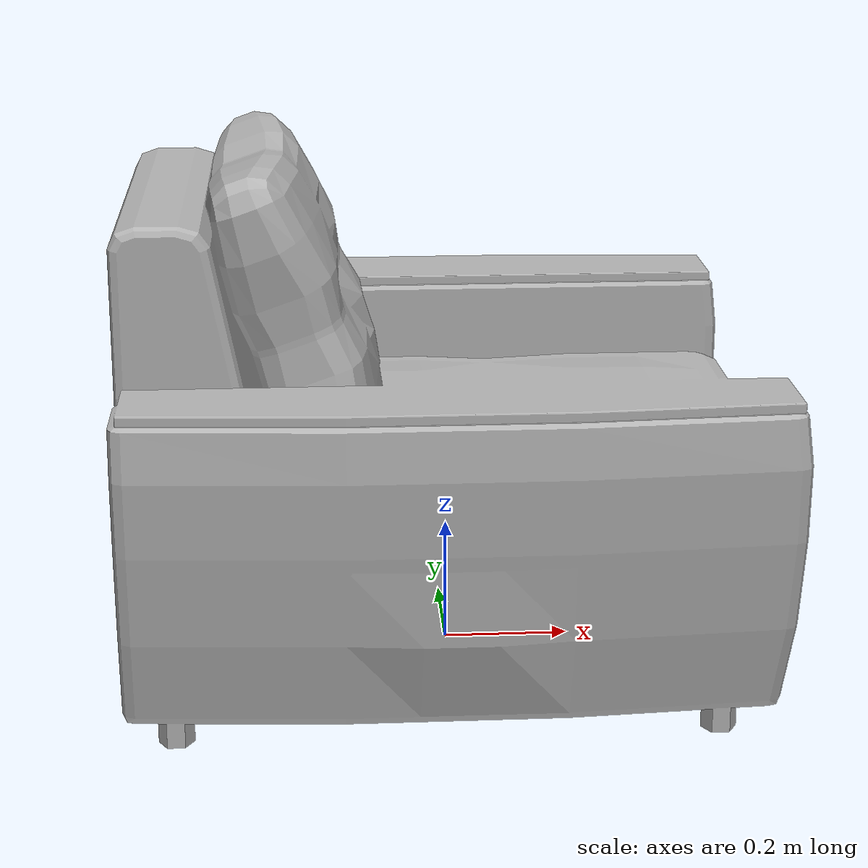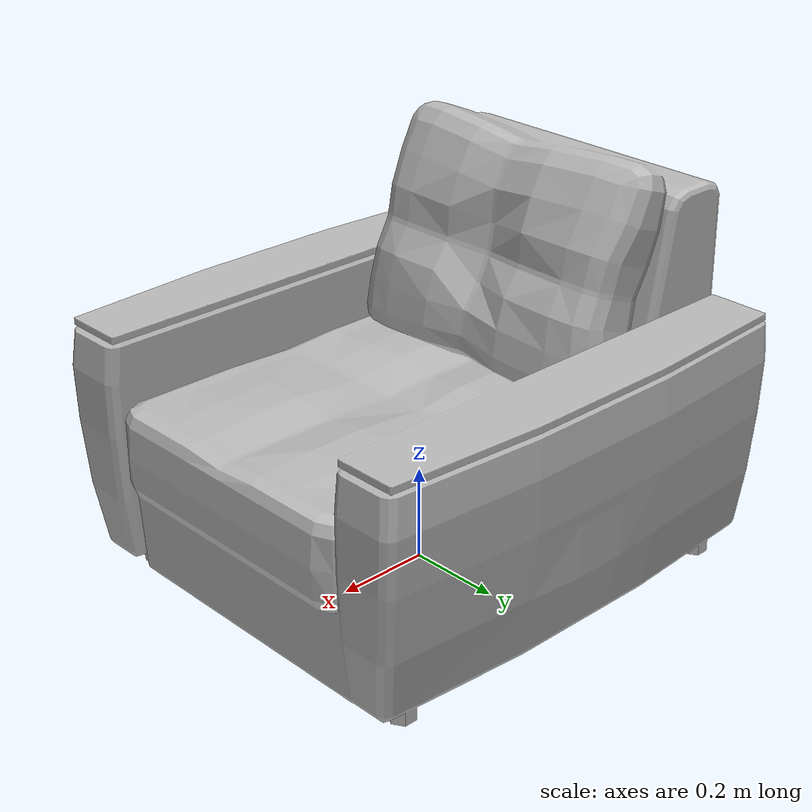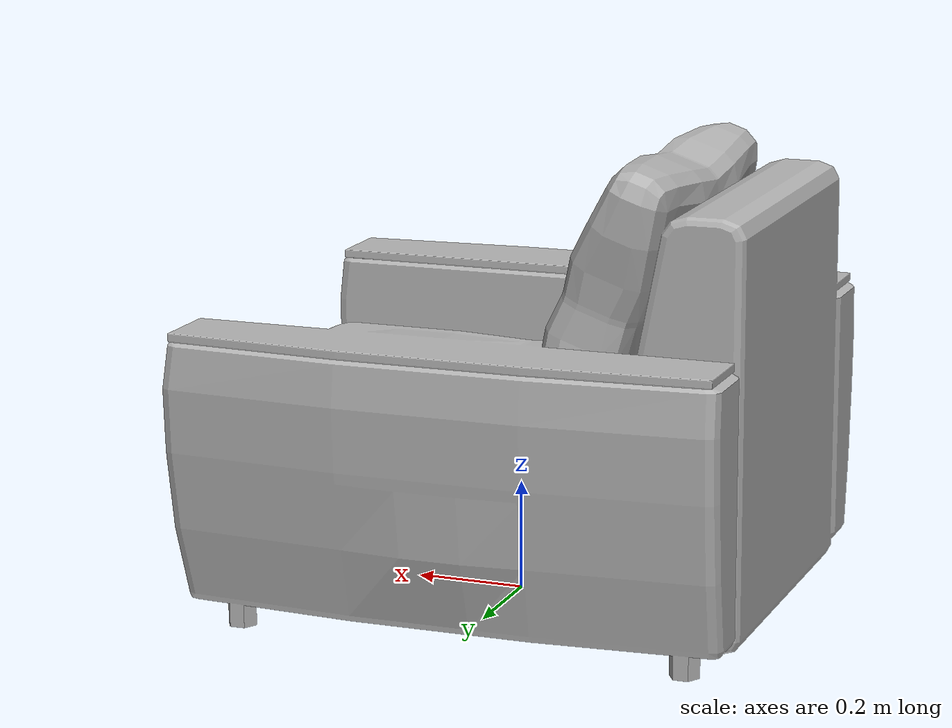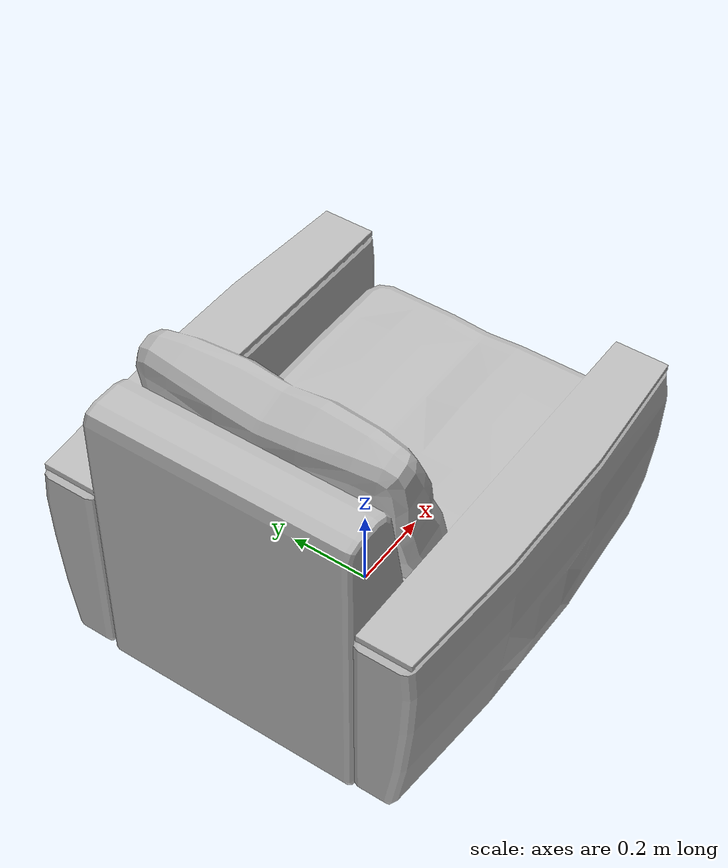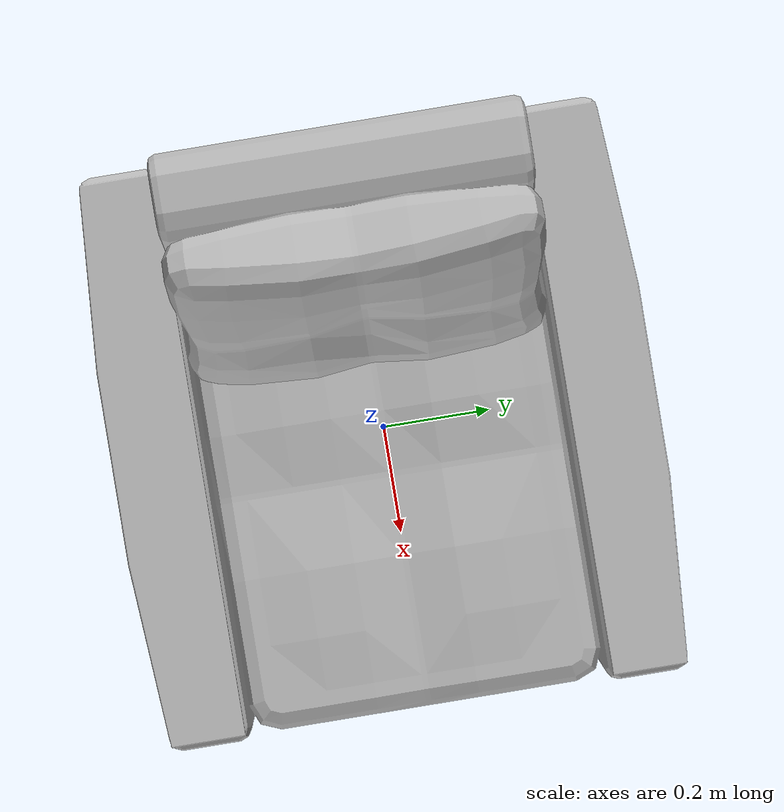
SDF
<?xml version='1.0'?>
<sdf version='1.4'>
  <model name='s__645'>
    <pose>0 0 0 0 0 0</pose>
    <static>true</static>
    <link name='link'>
      <collision name='collision'>
        <pose>0 0 0 0 0 0</pose>
        <geometry>
          <box>
            <size>1 0.95 2</size>
          </box>
        </geometry>
      </collision>
      <visual name='visual'>
        <pose>0 0 0 0 0 0</pose>
        <geometry>
          <mesh><uri>model://s__645/s__645.dae</uri></mesh>
        </geometry>
      </visual>
    </link>
  </model>
</sdf>
